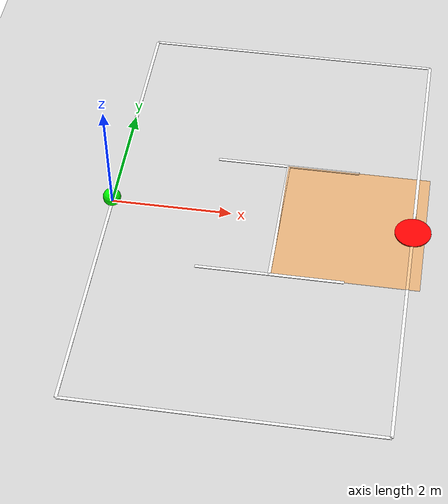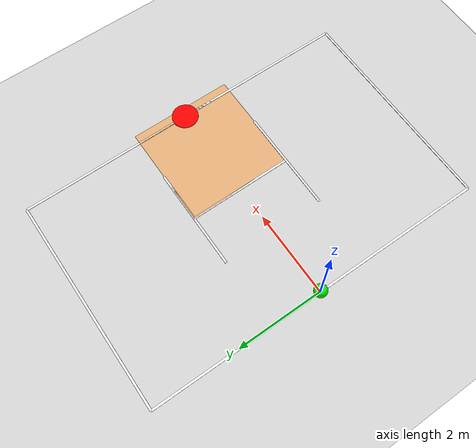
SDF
<sdf version="1.6">
  <world name="basketball_world">

    <plugin name="gazebo_ros_state" filename="libgazebo_ros_state.so">
      <ros>
        <namespace>/gazebo</namespace>
      </ros>
      <update_rate>20.0</update_rate>
    </plugin>

    <include>
      <uri>model://ground_plane</uri>
    </include>

    <include>
      <uri>model://sun</uri>
    </include>

    <!-- Goal marker (red cylinder) -->
    <model name="goal_marker">
      <static>true</static>
      <pose>5 0 0.01 0 0 0</pose>
      <link name="link">
        <visual name="visual">
          <geometry>
            <cylinder>
              <radius>0.3</radius>
              <length>0.02</length>
            </cylinder>
          </geometry>
          <material>
            <ambient>1 0 0 1</ambient>
            <diffuse>1 0 0 1</diffuse>
          </material>
        </visual>
      </link>
    </model>

    <!-- Paint zone (key area) -->
    <model name="paint_zone">
      <static>true</static>
      <pose>4.0 0 0.005 0 0 0</pose>
      <link name="link">
        <visual name="visual">
          <geometry>
            <box>
              <size>2.4 2.4 0.01</size>
            </box>
          </geometry>
          <material>
            <ambient>1 0.5 0 0.4</ambient>
            <diffuse>1 0.5 0 0.4</diffuse>
          </material>
        </visual>
      </link>
    </model>

    <!-- Half court line (vertical) -->
    <model name="half_court_line">
      <static>true</static>
      <pose>0 0 0.005 0 0 0</pose>
      <link name="link">
        <visual name="visual">
          <geometry>
            <box>
              <size>0.05 8.0 0.01</size>
            </box>
          </geometry>
          <material>
            <ambient>1 1 1 1</ambient>
            <diffuse>1 1 1 1</diffuse>
          </material>
        </visual>
      </link>
    </model>

    <!-- Top sideline -->
    <model name="top_sideline">
      <static>true</static>
      <pose>2.5 4.0 0.005 0 0 0</pose>
      <link name="link">
        <visual name="visual">
          <geometry>
            <box>
              <size>5.0 0.05 0.01</size>
            </box>
          </geometry>
          <material>
            <ambient>1 1 1 1</ambient>
            <diffuse>1 1 1 1</diffuse>
          </material>
        </visual>
      </link>
    </model>

    <!-- Bottom sideline -->
    <model name="bottom_sideline">
      <static>true</static>
      <pose>2.5 -4.0 0.005 0 0 0</pose>
      <link name="link">
        <visual name="visual">
          <geometry>
            <box>
              <size>5.0 0.05 0.01</size>
            </box>
          </geometry>
          <material>
            <ambient>1 1 1 1</ambient>
            <diffuse>1 1 1 1</diffuse>
          </material>
        </visual>
      </link>
    </model>

    <!-- Baseline (right end) -->
    <model name="baseline">
      <static>true</static>
      <pose>5.0 0 0.005 0 0 0</pose>
      <link name="link">
        <visual name="visual">
          <geometry>
            <box>
              <size>0.05 8.0 0.01</size>
            </box>
          </geometry>
          <material>
            <ambient>1 1 1 1</ambient>
            <diffuse>1 1 1 1</diffuse>
          </material>
        </visual>
      </link>
    </model>

    <!-- Paint left line -->
    <model name="paint_left_line">
      <static>true</static>
      <pose>2.8 1.2 0.005 0 0 0</pose>
      <link name="link">
        <visual name="visual">
          <geometry>
            <box>
              <size>2.4 0.05 0.01</size>
            </box>
          </geometry>
          <material>
            <ambient>1 1 1 1</ambient>
            <diffuse>1 1 1 1</diffuse>
          </material>
        </visual>
      </link>
    </model>

    <!-- Paint right line -->
    <model name="paint_right_line">
      <static>true</static>
      <pose>2.8 -1.2 0.005 0 0 0</pose>
      <link name="link">
        <visual name="visual">
          <geometry>
            <box>
              <size>2.4 0.05 0.01</size>
            </box>
          </geometry>
          <material>
            <ambient>1 1 1 1</ambient>
            <diffuse>1 1 1 1</diffuse>
          </material>
        </visual>
      </link>
    </model>

    <!-- Paint top line (free throw line) -->
    <model name="free_throw_line">
      <static>true</static>
      <pose>2.8 0 0.005 0 0 0</pose>
      <link name="link">
        <visual name="visual">
          <geometry>
            <box>
              <size>0.05 2.4 0.01</size>
            </box>
          </geometry>
          <material>
            <ambient>1 1 1 1</ambient>
            <diffuse>1 1 1 1</diffuse>
          </material>
        </visual>
      </link>
    </model>

    <!-- Blocking point marker (green sphere) -->
    <model name="block_marker">
      <static>false</static>
      <pose>0 0 0.1 0 0 0</pose>
      <link name="link">
        <visual name="visual">
          <geometry>
            <sphere>
              <radius>0.15</radius>
            </sphere>
          </geometry>
          <material>
            <ambient>0 1 0 1</ambient>
            <diffuse>0 1 0 1</diffuse>
          </material>
        </visual>
      </link>
    </model>

  </world>
</sdf>
